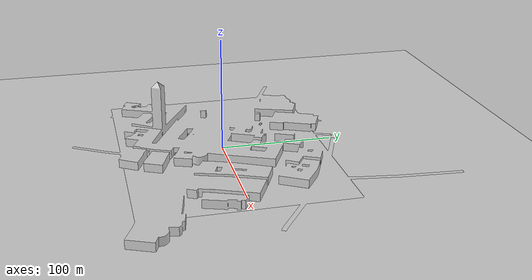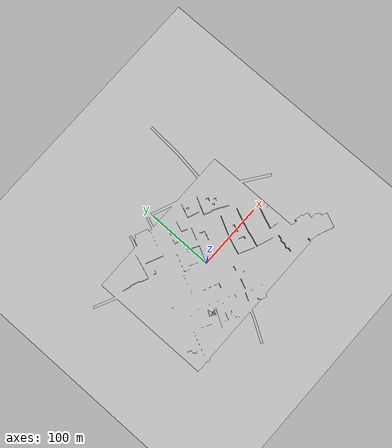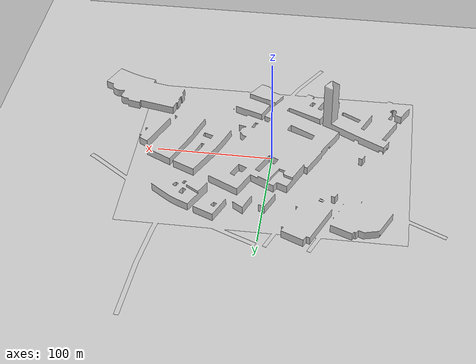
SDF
<?xml version="1.0" ?>
<sdf version="1.5">
  <world name="default">
    <!-- A global light source -->
    <include>
      <uri>model://sun</uri>
    </include>
    <!-- A ground plane -->
    <include>
      <uri>model://ground_plane</uri>
    </include>
    <include>
      <uri>model://rome10</uri>
    </include>

    <!-- Only one ROS interface plugin is required per world, as any other plugin can connect a Gazebo
         topic to a ROS topic (or vise versa). -->
    <plugin name="ros_interface_plugin" filename="librotors_gazebo_ros_interface_plugin.so"/>

    <physics name='default_physics' default='0' type='ode'>
      <gravity>0 0 -9.8066</gravity>
      <ode>
        <solver>
          <type>quick</type>
          <iters>10</iters>
          <sor>1.3</sor>
          <use_dynamic_moi_rescaling>0</use_dynamic_moi_rescaling>
        </solver>
        <constraints>
          <cfm>0</cfm>
          <erp>0.2</erp>
          <contact_max_correcting_vel>100</contact_max_correcting_vel>
          <contact_surface_layer>0.001</contact_surface_layer>
        </constraints>
      </ode>
      <max_step_size>0.002</max_step_size>
      <real_time_factor>1</real_time_factor>
      <real_time_update_rate>500</real_time_update_rate>
      <magnetic_field>6e-06 2.3e-05 -4.2e-05</magnetic_field>
    </physics>
  </world>
</sdf>

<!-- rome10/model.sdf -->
<sdf version="1.5">
  <model name="rome">
    <static>true</static>
    <link name="link">
      <collision name="collision">
        <geometry>
          <mesh>
            <uri>model://rome10/meshes/rome.dae</uri>
          </mesh>
          <scale>100.0 100.0 100.0</scale>
        </geometry>
      </collision>
      <visual name="visual">
        <geometry>
          <mesh>
            <uri>model://rome10/meshes/rome.dae</uri>
          </mesh>
          <scale>100.0 100.0 100.0</scale>
        </geometry>
      </visual>
    </link>
  </model>
</sdf>
